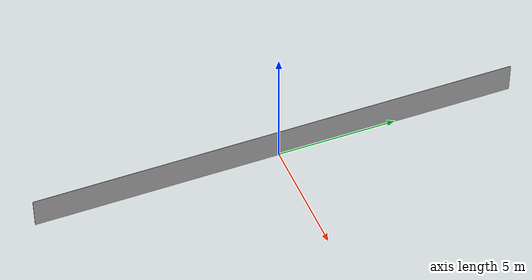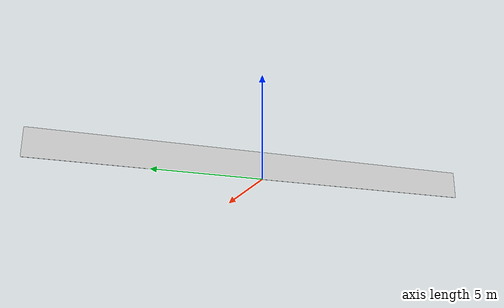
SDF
<?xml version="1.0" ?>
<sdf version="1.5">
  <model name="object_robocup_wall20m">
    <static>true</static>
    <link name="link">
      <collision name="surface">
        <pose>0 0 0 0 0 0</pose>
        <geometry>
          <mesh>
			  <scale>1 1 1</scale>
            <uri>model://object_robocup_wall20m/meshes/object_robocup_wall20m.dae</uri>
          </mesh>
        </geometry>
      </collision>

      <visual name="visual">
		<pose>0 0 0 0 0 0</pose>
        <geometry>
          <mesh>
            <uri>model://object_robocup_wall20m/meshes/object_robocup_wall20m.dae</uri>
          </mesh>
        </geometry>
      </visual>
    </link>
  </model>
</sdf>
